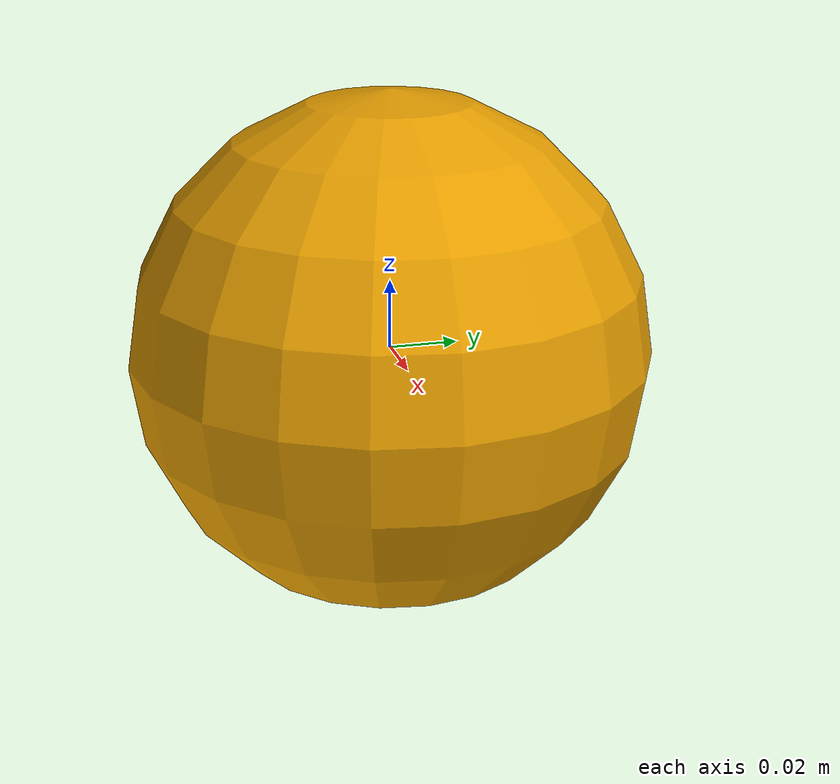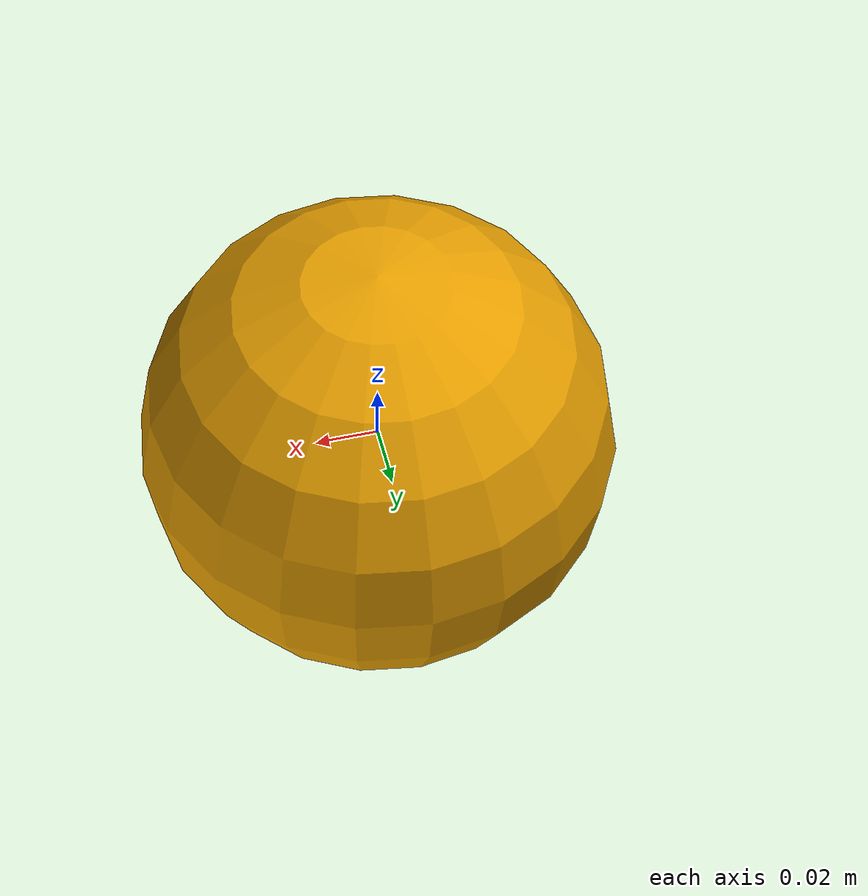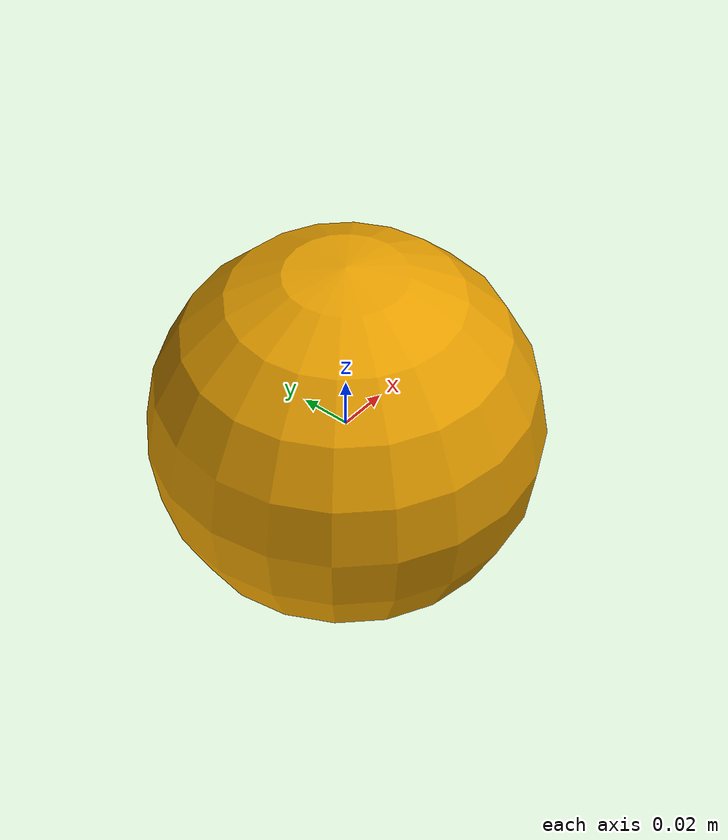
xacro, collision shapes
<?xml version="1.0"?>
<robot name="vehicle" xmlns:xacro="http://www.ros.org/wiki/xacro">

    <!-- CONFIGURATION FILE (YAML) -->
    <xacro:property name="params" value="${load_yaml('$(arg params)')}"/>

    <!--  VEHICLE PHYSICS  -->

    <!-- BASE LINK -->
    <link name="base_link">

        <inertial>
            <mass value="${params['mass']}" />
            <origin xyz="0 0 0" />
            <inertia ixx="${params['inertial']['xx']}" ixy="${params['inertial']['xy']}" ixz="${params['inertial']['xz']}"
                     iyy="${params['inertial']['yy']}" iyz="${params['inertial']['yz']}"
                     izz="${params['inertial']['zz']}"/>
        </inertial>

        <visual>
            <origin xyz="0 0 0" rpy="0 0 -1.57" />
            <geometry>
                <mesh filename="package://sim_vehicle/meshes/drone.dae" />
            </geometry>
        </visual>

        <collision>
            <origin xyz="0 0 0" rpy="0 0 0" />
            <geometry>
                <sphere radius="0.075"/>
            </geometry>
        </collision>

    </link>

    <!-- PHYSICS PLUGIN -->
    <gazebo>
        <plugin filename="libmodel2gazebo.so" name="model2gazebo">
            <node_name>model2gazebo</node_name>
            <rate>100</rate>
            <yaml_config>$(arg params)</yaml_config>
        </plugin>
    </gazebo>

    <!--  MAIN SENSORS   -->

    <xacro:include filename="$(find sim_vehicle)/sensors/sensors.urdf.xacro"/>

</robot>

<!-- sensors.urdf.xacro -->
<robot xmlns:xacro="http://www.ros.org/wiki/xacro">

    <!-- IMU (Inertal Motion Unit) -->
    <xacro:include filename="$(find sim_vehicle)/sensors/imu.urdf.xacro"/>

    <!-- Camera Front -->
    <xacro:include filename="$(find sim_vehicle)/sensors/camera.urdf.xacro"/>

</robot>

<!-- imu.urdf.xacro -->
<robot xmlns:xacro="http://www.ros.org/wiki/xacro">

    <!-- IMU (Inertal Motion Unit) -->
    <link name="imu_link">
        <collision>
            <origin xyz="0 0 0" rpy="0 0 0" />
            <geometry>
                <box size="0 0 0" />
            </geometry>
        </collision>

        <visual>
            <origin xyz="0 0 0" rpy="0 0 0" />
            <geometry>
                <box size="0 0 0" />
            </geometry>
        </visual>

        <inertial>
            <mass value="1e-5" />
            <origin xyz="0 0 0" rpy="0 0 0" />
            <inertia ixx="1e-6" ixy="0" ixz="0" iyy="1e-6" iyz="0" izz="1e-6" />
        </inertial>
    </link>

    <joint name="imu_joint" type="fixed">
        <axis xyz="0 0 0" />
        <origin xyz="0 0 0" rpy="0 0 3.1416" />
        <parent link="base_link" />
        <child link="imu_link" />
    </joint>

    <gazebo>
        <plugin name="imu_plugin" filename="libgazebo_ros_imu.so">
            <alwaysOn>true</alwaysOn>
            <bodyName>imu_link</bodyName>
            <topicName>imu</topicName>
            <serviceName>imu_service</serviceName>
            <gaussianNoise>0.0</gaussianNoise>
            <updateRate>100.0</updateRate>
        </plugin>
    </gazebo>

</robot>

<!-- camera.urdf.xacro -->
<robot xmlns:xacro="http://www.ros.org/wiki/xacro">

    <xacro:property name="camera_link" value="0.005" /> <!-- Size of square 'camera' box -->

    <!-- Camera -->
    <link name="camera_link">
        <collision>
            <origin xyz="0 0 0" rpy="0 0 0" />
            <geometry>
                <box size="${camera_link} ${camera_link} ${camera_link}" />
            </geometry>
        </collision>

        <visual>
            <origin xyz="0 0 0" rpy="0 0 0" />
            <geometry>
                <box size="${camera_link} ${camera_link} ${camera_link}" />
            </geometry>
        </visual>

        <inertial>
            <mass value="1e-5" />
            <origin xyz="0 0 0" rpy="0 0 0" />
            <inertia ixx="1e-6" ixy="0" ixz="0" iyy="1e-6" iyz="0" izz="1e-6" />
        </inertial>
    </link>

    <joint name="camera_joint" type="fixed">
        <axis xyz="0 0 0" />
        <origin xyz="0 0 0" rpy="0 0 0" />
        <parent link="base_link" />
        <child link="camera_link" />
    </joint>

    <!-- camera -->
    <gazebo reference="camera_link">
        <sensor type="camera" name="camera1">

            <update_rate>30.0</update_rate>
            <camera name="head">
                <horizontal_fov>1.3962634</horizontal_fov>
                <image>
                    <width>800</width>
                    <height>800</height>
                    <format>R8G8B8</format>
                </image>
                <clip>
                    <near>0.02</near>
                    <far>300</far>
                </clip>
                <noise>
                    <type>gaussian</type>
                    <mean>0.0</mean>
                    <stddev>0.007</stddev>
                </noise>
            </camera>

            <plugin name="camera_controller" filename="libgazebo_ros_camera.so">
                <alwaysOn>true</alwaysOn>
                <updateRate>0.0</updateRate>
                <cameraName>rrbot/camera1</cameraName>
                <imageTopicName>image_raw</imageTopicName>
                <cameraInfoTopicName>camera_info</cameraInfoTopicName>
                <frameName>camera_link</frameName>
                <hackBaseline>0.07</hackBaseline>
                <distortionK1>0.0</distortionK1>
                <distortionK2>0.0</distortionK2>
                <distortionK3>0.0</distortionK3>
                <distortionT1>0.0</distortionT1>
                <distortionT2>0.0</distortionT2>
            </plugin>
        </sensor>
    </gazebo>
</robot>
